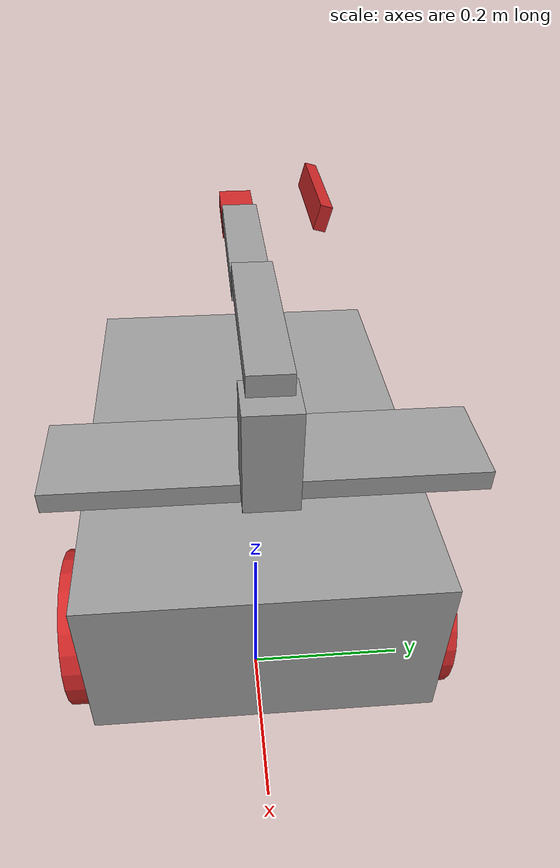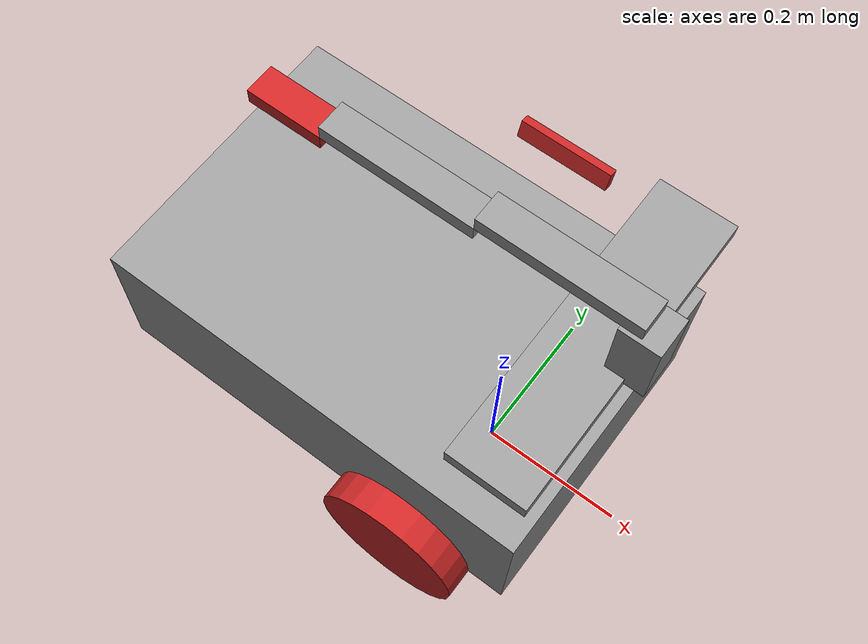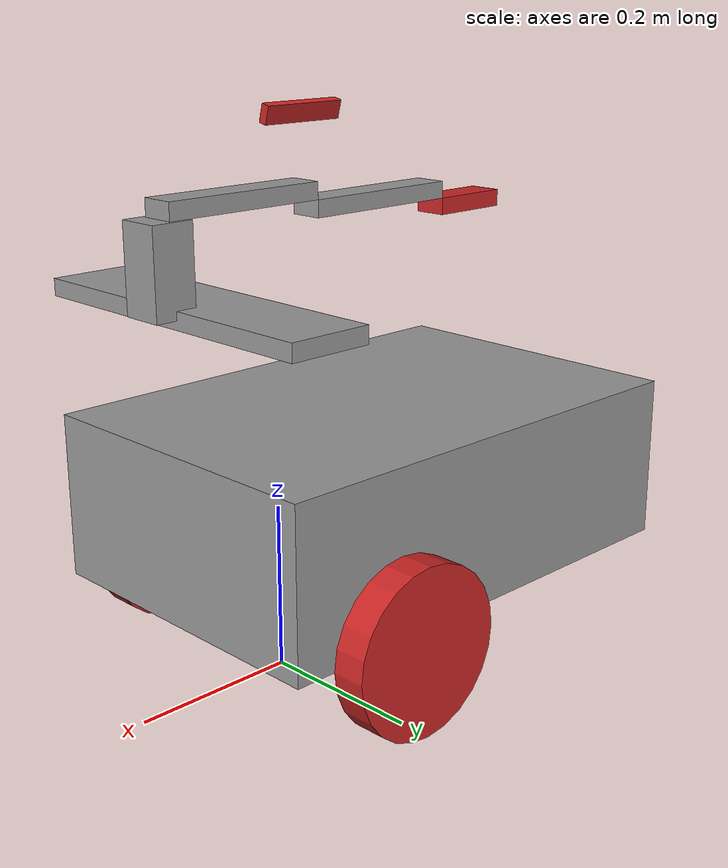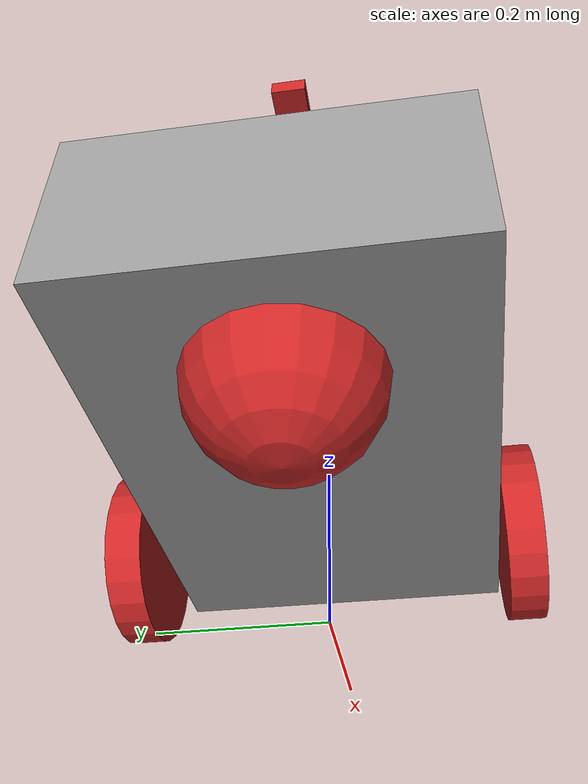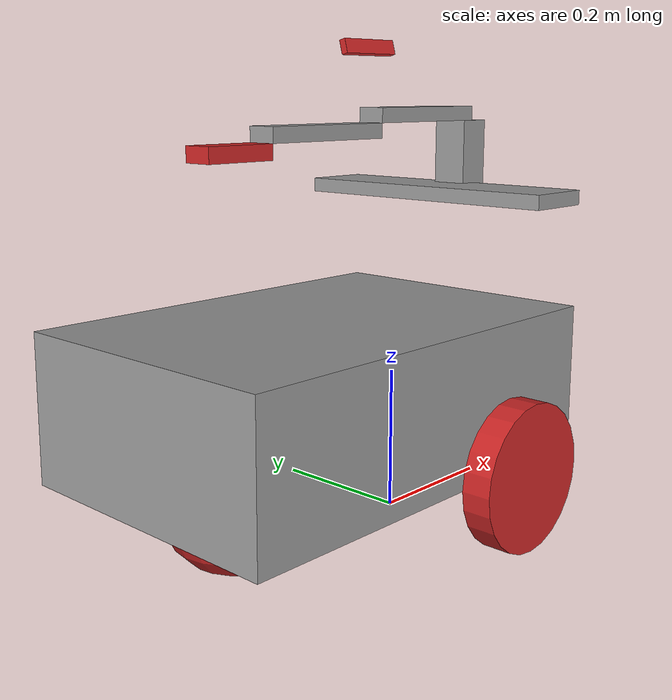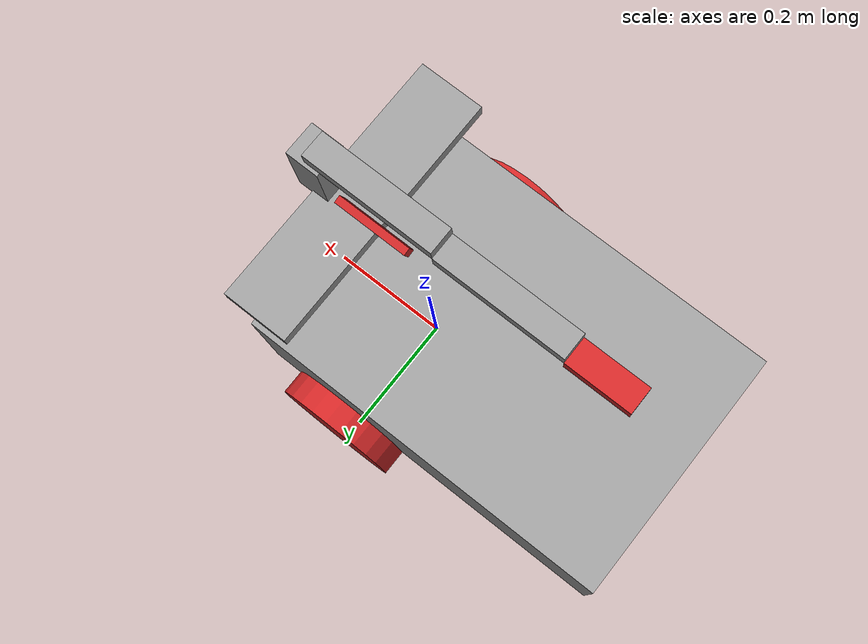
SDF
<?xml version='1.0'?>
<sdf version='1.6'>
  <model name='robot1'>
    <pose frame=''>0 0 0 0 0 0</pose>
    <link name='body'>
      <inertial>
        <mass>2.0</mass>
        <inertia>
          <ixx>0.05</ixx>
          <ixy>0.0</ixy>
          <ixz>0.0</ixz>
          <iyy>0.05</iyy>
          <iyz>0.0</iyz>
          <izz>0.05</izz>
        </inertia>
      </inertial>
      <collision name='body_collision'>
        <pose frame=''>0 0 0 0 0 0</pose>
        <geometry>
          <box>
            <size>0.6 0.39 0.2</size>
          </box>
        </geometry>
      </collision>
      <visual name='body_visual'>
        <pose frame=''>0 0 0 0 0 0</pose>
        <geometry>
          <box>
            <size>0.6 0.4 0.2</size>
          </box>
        </geometry>
        <material>
          <script>
            <uri>file://media/materials/scripts/gazebo.material</uri>
            <name>Gazebo/Gray</name>
          </script>
        </material>
      </visual>
      <pose frame=''>-0.15 0 0.2 0 0 0</pose>
    </link>

    <link name='wheel_l'>
      <inertial>
        <mass>0.3</mass>
        <inertia>
          <ixx>0.01</ixx>
          <ixy>0.0</ixy>
          <ixz>0.0</ixz>
          <iyy>0.01</iyy>
          <iyz>0.0</iyz>
          <izz>0.01</izz>
        </inertia>
      </inertial>
      <collision name='wheel_l_collision'>
        <pose frame=''>0 0 0 0 0 0</pose>
        <geometry>
          <cylinder>
            <radius>0.1</radius>
            <length>0.04</length>
          </cylinder>
        </geometry>
        <surface>
          <contact>
            <ode>
              <kp>100000</kp>
              <kd>100</kd>
            </ode>
          </contact>
        </surface>
      </collision>
      <visual name='wheel_l_visual'>
        <pose frame=''>0 0 0 0 0 0</pose>
        <geometry>
          <cylinder>
            <radius>0.1</radius>
            <length>0.04</length>
          </cylinder>
        </geometry>
        <material>
          <script>
            <uri>file://media/materials/scripts/gazebo.material</uri>
            <name>Gazebo/Red</name>
          </script>
        </material>
      </visual>
      <pose frame=''>0 0.22 0.1 0 1.5707 1.5707</pose>
    </link>
    <joint name='wheel_l_joint' type='revolute'>
      <parent>body</parent>
      <child>wheel_l</child>
      <pose>0 0 0 0 0 0</pose>
      <axis>
        <xyz>0 0 1</xyz>
      </axis>
    </joint>

    <link name='wheel_r'>
      <inertial>
        <mass>0.3</mass>
        <inertia>
          <ixx>0.01</ixx>
          <ixy>0.0</ixy>
          <ixz>0.0</ixz>
          <iyy>0.01</iyy>
          <iyz>0.0</iyz>
          <izz>0.01</izz>
        </inertia>
      </inertial>
      <collision name='wheel_r_collision'>
        <pose frame=''>0 0 0 0 0 0</pose>
        <geometry>
          <cylinder>
            <radius>0.1</radius>
            <length>0.04</length>
          </cylinder>
        </geometry>
        <surface>
          <contact>
            <ode>
              <kp>100000</kp>
              <kd>100</kd>
            </ode>
          </contact>
        </surface>
      </collision>
      <visual name='wheel_r_visual'>
        <pose frame=''>0 0 0 0 0 0</pose>
        <geometry>
          <cylinder>
            <radius>0.1</radius>
            <length>0.04</length>
          </cylinder>
        </geometry>
        <material>
          <script>
            <uri>file://media/materials/scripts/gazebo.material</uri>
            <name>Gazebo/Red</name>
          </script>
        </material>
      </visual>
      <pose frame=''>0 -0.22 0.1 0 1.5707 1.5707</pose>
    </link>
    <joint name='wheel_r_joint' type='revolute'>
      <parent>body</parent>
      <child>wheel_r</child>
      <pose>0 0 0 0 0 0</pose>
      <axis>
        <xyz>0 0 1</xyz>
      </axis>
    </joint>

    <link name='rear_ball'>
      <inertial>
        <mass>0.1</mass>
        <inertia>
          <ixx>0.01</ixx>
          <ixy>0.0</ixy>
          <ixz>0.0</ixz>
          <iyy>0.01</iyy>
          <iyz>0.0</iyz>
          <izz>0.01</izz>
        </inertia>
      </inertial>
      <collision name='rear_ball_collision'>
        <pose frame=''>0 0 0 0 0 0</pose>
        <geometry>
          <sphere>
            <radius>0.1</radius>
          </sphere>
        </geometry>
        <surface>
          <contact>
            <ode>
              <kp>100000</kp>
              <kd>100</kd>
            </ode>
          </contact>
          <friction>
            <ode>
              <mu>0.01</mu>
              <mu2>0.01</mu2>
            </ode>
          </friction>
        </surface>
      </collision>
      <visual name='rear_ball_visual'>
        <pose frame=''>0 0 0 0 0 0</pose>
        <geometry>
          <sphere>
            <radius>0.1</radius>
          </sphere>
        </geometry>
        <material>
          <script>
            <uri>file://media/materials/scripts/gazebo.material</uri>
            <name>Gazebo/Red</name>
          </script>
        </material>
      </visual>
      <pose frame=''>-0.3 0 0.1 0 0 0</pose>
    </link>
    <joint name='rear_ball_joint' type='fixed'>
      <parent>body</parent>
      <child>rear_ball</child>
      <pose>0 0 0 0 0 0</pose>
    </joint>

    <plugin name="differential_drive_controller" filename="libgazebo_ros_diff_drive.so">
      <alwaysOn>true</alwaysOn>
      <updateRate>20</updateRate>
      <argument>cmd_vel:=device/move/cmd_vel</argument>
      <argument>odom:=device/move/odom</argument>
      <left_joint>wheel_l_joint</left_joint>
      <right_joint>wheel_r_joint</right_joint>
      <wheel_separation>0.4</wheel_separation>
      <wheel_diameter>0.1</wheel_diameter>
      <max_wheel_acceleration>3</max_wheel_acceleration>
      <max_wheel_torque>0.5</max_wheel_torque>
      <publish_odom>true</publish_odom>
      <odometry_topic>odom</odometry_topic>
      <odometry_frame>odom</odometry_frame>
      <robot_base_frame>base_link</robot_base_frame>
      <publish_odom_tf>true</publish_odom_tf>
    </plugin>

    <link name='elevator'>
      <inertial>
        <mass>0.1</mass>
        <inertia>
          <ixx>0.01</ixx>
          <ixy>0.0</ixy>
          <ixz>0.0</ixz>
          <iyy>0.01</iyy>
          <iyz>0.0</iyz>
          <izz>0.01</izz>
        </inertia>
      </inertial>
      <collision name='elevator_collision'>
        <pose frame=''>0 0 0 0 0 0</pose>
        <geometry>
          <box>
            <size>0.1 0.4 0.02</size>
          </box>
        </geometry>
      </collision>
      <visual name='elevator_visual'>
        <pose frame=''>0 0 0 0 0 0</pose>
        <geometry>
          <box>
            <size>0.1 0.4 0.02</size>
          </box>
        </geometry>
        <material>
          <script>
            <uri>file://media/materials/scripts/gazebo.material</uri>
            <name>Gazebo/Gray</name>
          </script>
        </material>
      </visual>
      <pose frame=''>0.1 0 0.45 0 0 0</pose>
    </link>
    <joint name='elevator_joint' type='prismatic'>
      <parent>body</parent>
      <child>elevator</child>
      <pose>0 0 0 0 0 0</pose>
      <axis>
        <xyz>0 0 1</xyz>
        <dynamics>
          <damping>0.0</damping>
          <friction>0.0</friction>
        </dynamics>
        <limit>
          <effort>100.0</effort>
          <lower>-0.1</lower>
          <upper>0.5</upper>
          <velocity>0.1</velocity>
        </limit>
      </axis>
    </joint>

    <plugin name="linear_joint" filename="libst_gazebo_linear_joint.so">
    </plugin>

    <link name='arm_base'>
      <inertial>
        <mass>0.1</mass>
        <inertia>
          <ixx>0.01</ixx>
          <ixy>0.0</ixy>
          <ixz>0.0</ixz>
          <iyy>0.01</iyy>
          <iyz>0.0</iyz>
          <izz>0.01</izz>
        </inertia>
      </inertial>
      <collision name='arm_base_collision'>
        <pose frame=''>0 0 0 0 0 0</pose>
        <geometry>
          <box>
            <size>0.05 0.05 0.1</size>
          </box>
        </geometry>
      </collision>
      <visual name='arm_base_visual'>
        <pose frame=''>0 0 0 0 0 0</pose>
        <geometry>
          <box>
            <size>0.05 0.05 0.1</size>
          </box>
        </geometry>
        <material>
          <script>
            <uri>file://media/materials/scripts/gazebo.material</uri>
            <name>Gazebo/Gray</name>
          </script>
        </material>
      </visual>
      <pose frame='elevator'>0.05 0 0.05 0 0 3.1415</pose>
    </link>
    <joint name='arm_base_joint' type='fixed'>
      <parent>elevator</parent>
      <child>arm_base</child>
      <pose relative_to="elevator">0 0 0 0 0 0</pose>
      <axis>
        <xyz>0 0 1</xyz>
        <dynamics>
          <damping>0.0</damping>
          <friction>0.0</friction>
        </dynamics>
        <limit>
          <effort>1000.0</effort>
          <lower>-1</lower>
          <upper>5</upper>
          <velocity>30.0</velocity>
        </limit>
      </axis>
    </joint>

    <link name='arm1'>
      <inertial>
        <mass>0.1</mass>
        <inertia>
          <ixx>0.01</ixx>
          <ixy>0.0</ixy>
          <ixz>0.0</ixz>
          <iyy>0.01</iyy>
          <iyz>0.0</iyz>
          <izz>0.01</izz>
        </inertia>
      </inertial>
      <collision name='arm1_collision'>
        <pose frame=''>0 0 0 0 0 0</pose>
        <geometry>
          <box>
            <size>0.2 0.04 0.02</size>
          </box>
        </geometry>
      </collision>
      <visual name='arm1_visual'>
        <pose frame=''>0 0 0 0 0 0</pose>
        <geometry>
          <box>
            <size>0.2 0.04 0.02</size>
          </box>
        </geometry>
        <material>
          <script>
            <uri>file://media/materials/scripts/gazebo.material</uri>
            <name>Gazebo/Gray</name>
          </script>
        </material>
      </visual>
      <pose frame='arm_base'>0.1 0 0.06 0 0 0</pose>
    </link>
    <joint name='arm1_joint' type='revolute'>
      <parent>arm_base</parent>
      <child>arm1</child>
      <pose relative_to="arm_base">0 0 0 0 0 0</pose>
      <axis>
        <xyz>0 0 1</xyz>
        <dynamics>
          <damping>0.0</damping>
          <friction>0.0</friction>
        </dynamics>
        <limit>
          <effort>100.0</effort>
          <lower>-6</lower>
          <upper>6</upper>
          <velocity>2.0</velocity>
        </limit>
      </axis>
    </joint>

    <link name='arm2'>
      <inertial>
        <mass>0.1</mass>
        <inertia>
          <ixx>0.01</ixx>
          <ixy>0.0</ixy>
          <ixz>0.0</ixz>
          <iyy>0.01</iyy>
          <iyz>0.0</iyz>
          <izz>0.01</izz>
        </inertia>
      </inertial>
      <collision name='arm2_collision'>
        <pose frame=''>0 0 0 0 0 0</pose>
        <geometry>
          <box>
            <size>0.2 0.04 0.02</size>
          </box>
        </geometry>
      </collision>
      <visual name='arm2_visual'>
        <pose frame=''>0 0 0 0 0 0</pose>
        <geometry>
          <box>
            <size>0.2 0.04 0.02</size>
          </box>
        </geometry>
        <material>
          <script>
            <uri>file://media/materials/scripts/gazebo.material</uri>
            <name>Gazebo/Gray</name>
          </script>
        </material>
      </visual>
      <pose frame='arm1'>0.2 0 -0.02 0 0 0</pose>
    </link>
    <joint name='arm2_joint' type='revolute'>
      <parent>arm1</parent>
      <child>arm2</child>
      <pose relative_to="arm1">0.1 0 0 0 0 0</pose>
      <axis>
        <xyz>0 0 1</xyz>
        <dynamics>
          <damping>0.0</damping>
          <friction>0.0</friction>
        </dynamics>
        <limit>
          <effort>100.0</effort>
          <lower>-6</lower>
          <upper>6</upper>
          <velocity>2.0</velocity>
        </limit>
      </axis>
    </joint>

    <link name='arm3'>
      <inertial>
        <mass>0.1</mass>
        <inertia>
          <ixx>0.01</ixx>
          <ixy>0.0</ixy>
          <ixz>0.0</ixz>
          <iyy>0.01</iyy>
          <iyz>0.0</iyz>
          <izz>0.01</izz>
        </inertia>
      </inertial>
      <collision name='arm3_collision'>
        <pose frame=''>0 0 0 0 0 0</pose>
        <geometry>
          <box>
            <size>0.1 0.04 0.02</size>
          </box>
        </geometry>
      </collision>
      <visual name='arm3_visual'>
        <pose frame=''>0 0 0 0 0 0</pose>
        <geometry>
          <box>
            <size>0.1 0.04 0.02</size>
          </box>
        </geometry>
        <material>
          <script>
            <uri>file://media/materials/scripts/gazebo.material</uri>
            <name>Gazebo/Red</name>
          </script>
        </material>
      </visual>
      <pose frame='arm2'>0.15 0 -0.02 0 0 0</pose>
    </link>
    <joint name='arm3_joint' type='revolute'>
      <parent>arm2</parent>
      <child>arm3</child>
      <pose relative_to="arm2">0.1 0 0 0 0 0</pose>
      <axis>
        <xyz>0 0 1</xyz>
        <dynamics>
          <damping>0.0</damping>
          <friction>0.0</friction>
        </dynamics>
        <limit>
          <effort>100.0</effort>
          <lower>-6</lower>
          <upper>6</upper>
          <velocity>2.0</velocity>
        </limit>
      </axis>
    </joint>

    <plugin name="arm_joint" filename="libst_gazebo_arm_joint.so">
    </plugin>

    <!-- camera -->
    <link name='left_camera'>
      <inertial>
        <mass>0.1</mass>
        <inertia>
          <ixx>0.01</ixx>
          <ixy>0.0</ixy>
          <ixz>0.0</ixz>
          <iyy>0.01</iyy>
          <iyz>0.0</iyz>
          <izz>0.01</izz>
        </inertia>
      </inertial>
      <collision name='left_camera_collision'>
        <pose frame=''>0 0 0 0 0 0</pose>
        <geometry>
          <box>
            <size>0.01 0.1 0.02</size>
          </box>
        </geometry>
      </collision>
      <visual name='left_camera_visual'>
        <pose frame=''>0 0 0 0 0 0</pose>
        <geometry>
          <box>
            <size>0.01 0.1 0.02</size>
          </box>
        </geometry>
        <material>
          <script>
            <uri>file://media/materials/scripts/gazebo.material</uri>
            <name>Gazebo/Red</name>
          </script>
        </material>
      </visual>
      <pose frame='elevator'>-0.1 0.05 0.2 0 0.2618 1.5707</pose>

      <sensor name="camera" type="depth">
        <always_on>true</always_on>
        <visualize>true</visualize>
        <update_rate>10</update_rate>
        <pose>0 0 0 0 0 0</pose>
        <camera name="intel_realsense_r200">
          <horizontal_fov>1.02974</horizontal_fov>
          <image>
            <width>400</width>
            <height>300</height>
            <format>R8G8B8</format>
          </image>
          <depth_camera>
          </depth_camera>
          <clip>
            <near>0.02</near>
            <far>300</far>
          </clip>
          <noise>
            <type>gaussian</type>
            <mean>0.0</mean>
            <stddev>0.007</stddev>
          </noise>
        </camera>
        <plugin name="camera_driver" filename="libgazebo_ros_camera.so">
          <min_depth>0.2</min_depth>

          <ros>
          </ros>
        </plugin>
      </sensor>
    </link>
    <joint name='left_camera_joint' type='fixed'>
      <parent>elevator</parent>
      <child>left_camera</child>
      <pose relative_to="elevator">0 0 0 0 0 0</pose>
    </joint>

  </model>
</sdf>
